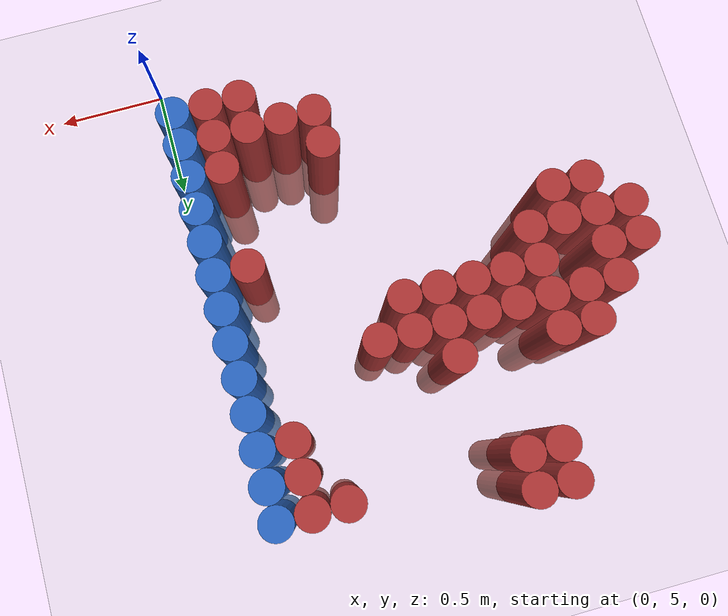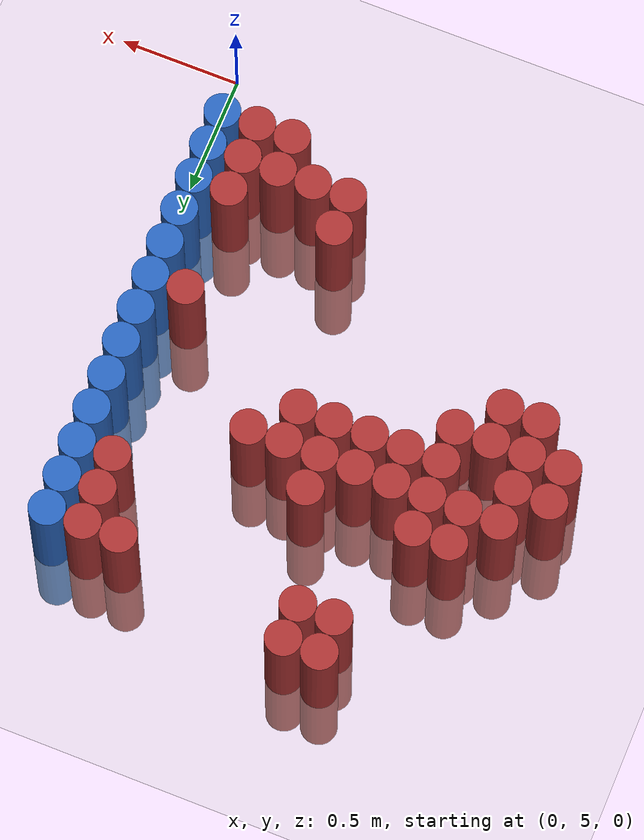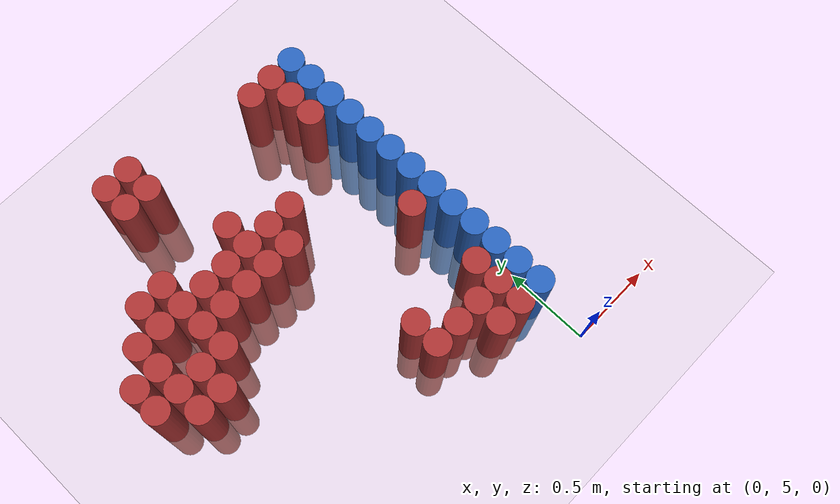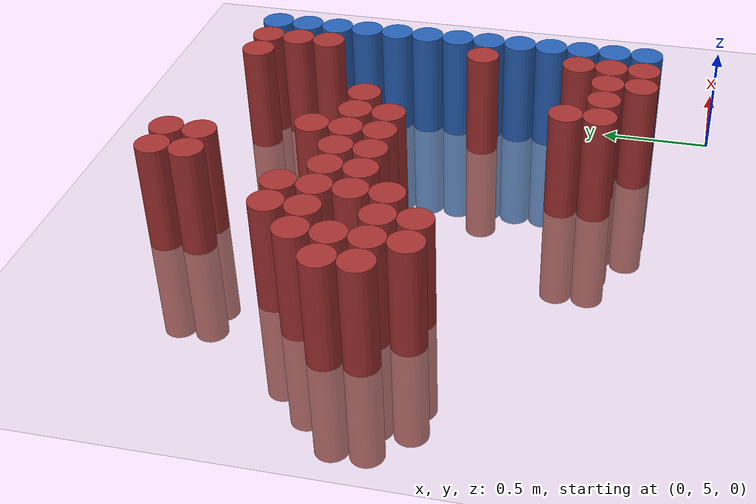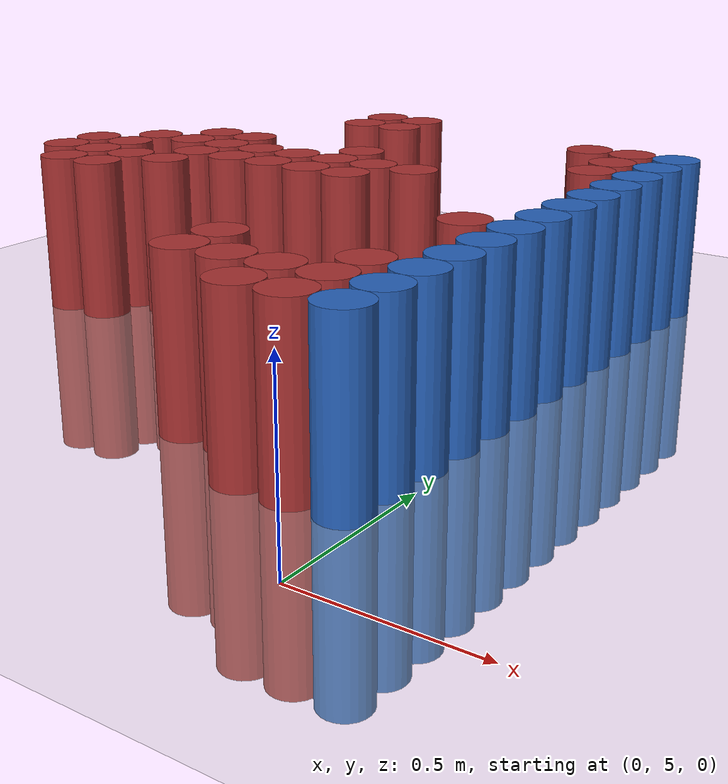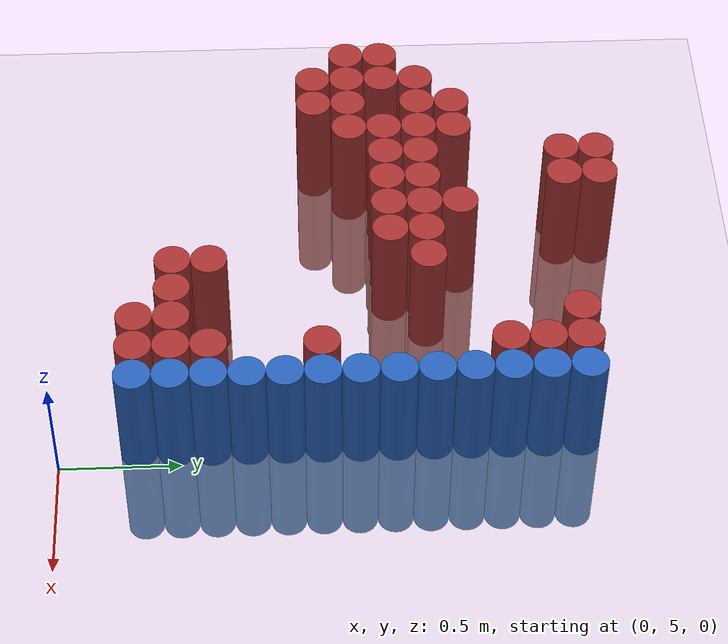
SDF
<sdf version="1.6">
 <world name="default">
  <model name="ground_plane">
   <static>1</static>
   <link name="link">
    <collision name="collision">
     <geometry><plane><normal>0 0 1</normal><size>100 100</size></plane></geometry>
     <surface><friction><ode><mu>100</mu><mu2>50</mu2></ode></friction></surface>
    </collision>
    <visual name="visual">
     <cast_shadows>0</cast_shadows>
     <geometry><plane><normal>0 0 1</normal><size>100 100</size></plane></geometry>
     <material>
      <script><uri>file://media/materials/scripts/gazebo.material</uri><name>Gazebo/Grey</name></script>
     </material>
    </visual>
   </link>
  </model>
  <model name="unit_cylinder_159">
   <static>1</static>
   <pose>-1.875000 6.225000 0.000000 0.000000 0.000000 0.000000</pose>
   <link name="link">
    <inertial>
     <mass>1</mass>
     <inertia><ixx>0.145833</ixx><ixy>0</ixy><ixz>0</ixz><iyy>0.145833</iyy><iyz>0</iyz><izz>0.125</izz></inertia>
    </inertial>
    <collision name="collision">
     <geometry><cylinder><radius>0.075000</radius><length>1</length></cylinder></geometry>
    </collision>
    <visual name="visual">
     <geometry><cylinder><radius>0.075000</radius><length>1</length></cylinder></geometry>
     <material>
      <ambient>0.648000 0.192000 0.192000 1</ambient>
      <diffuse>0.648000 0.192000 0.192000 1</diffuse>
     </material>
     <material>
      <script><name>Gazebo/Grey</name><uri>file://media/materials/scripts/gazebo.material</uri></script>
     </material>
    </visual>
   </link>
  </model>
  <model name="unit_cylinder_160">
   <static>1</static>
   <pose>-1.875000 6.375000 0.000000 0.000000 0.000000 0.000000</pose>
   <link name="link">
    <inertial>
     <mass>1</mass>
     <inertia><ixx>0.145833</ixx><ixy>0</ixy><ixz>0</ixz><iyy>0.145833</iyy><iyz>0</iyz><izz>0.125</izz></inertia>
    </inertial>
    <collision name="collision">
     <geometry><cylinder><radius>0.075000</radius><length>1</length></cylinder></geometry>
    </collision>
    <visual name="visual">
     <geometry><cylinder><radius>0.075000</radius><length>1</length></cylinder></geometry>
     <material>
      <ambient>0.648000 0.192000 0.192000 1</ambient>
      <diffuse>0.648000 0.192000 0.192000 1</diffuse>
     </material>
     <material>
      <script><name>Gazebo/Grey</name><uri>file://media/materials/scripts/gazebo.material</uri></script>
     </material>
    </visual>
   </link>
  </model>
  <model name="unit_cylinder_162">
   <static>1</static>
   <pose>-1.725000 6.075000 0.000000 0.000000 0.000000 0.000000</pose>
   <link name="link">
    <inertial>
     <mass>1</mass>
     <inertia><ixx>0.145833</ixx><ixy>0</ixy><ixz>0</ixz><iyy>0.145833</iyy><iyz>0</iyz><izz>0.125</izz></inertia>
    </inertial>
    <collision name="collision">
     <geometry><cylinder><radius>0.075000</radius><length>1</length></cylinder></geometry>
    </collision>
    <visual name="visual">
     <geometry><cylinder><radius>0.075000</radius><length>1</length></cylinder></geometry>
     <material>
      <ambient>0.648000 0.192000 0.192000 1</ambient>
      <diffuse>0.648000 0.192000 0.192000 1</diffuse>
     </material>
     <material>
      <script><name>Gazebo/Grey</name><uri>file://media/materials/scripts/gazebo.material</uri></script>
     </material>
    </visual>
   </link>
  </model>
  <model name="unit_cylinder_163">
   <static>1</static>
   <pose>-1.725000 6.225000 0.000000 0.000000 0.000000 0.000000</pose>
   <link name="link">
    <inertial>
     <mass>1</mass>
     <inertia><ixx>0.145833</ixx><ixy>0</ixy><ixz>0</ixz><iyy>0.145833</iyy><iyz>0</iyz><izz>0.125</izz></inertia>
    </inertial>
    <collision name="collision">
     <geometry><cylinder><radius>0.075000</radius><length>1</length></cylinder></geometry>
    </collision>
    <visual name="visual">
     <geometry><cylinder><radius>0.075000</radius><length>1</length></cylinder></geometry>
     <material>
      <ambient>0.648000 0.192000 0.192000 1</ambient>
      <diffuse>0.648000 0.192000 0.192000 1</diffuse>
     </material>
     <material>
      <script><name>Gazebo/Grey</name><uri>file://media/materials/scripts/gazebo.material</uri></script>
     </material>
    </visual>
   </link>
  </model>
  <model name="unit_cylinder_164">
   <static>1</static>
   <pose>-1.725000 6.375000 0.000000 0.000000 0.000000 0.000000</pose>
   <link name="link">
    <inertial>
     <mass>1</mass>
     <inertia><ixx>0.145833</ixx><ixy>0</ixy><ixz>0</ixz><iyy>0.145833</iyy><iyz>0</iyz><izz>0.125</izz></inertia>
    </inertial>
    <collision name="collision">
     <geometry><cylinder><radius>0.075000</radius><length>1</length></cylinder></geometry>
    </collision>
    <visual name="visual">
     <geometry><cylinder><radius>0.075000</radius><length>1</length></cylinder></geometry>
     <material>
      <ambient>0.648000 0.192000 0.192000 1</ambient>
      <diffuse>0.648000 0.192000 0.192000 1</diffuse>
     </material>
     <material>
      <script><name>Gazebo/Grey</name><uri>file://media/materials/scripts/gazebo.material</uri></script>
     </material>
    </visual>
   </link>
  </model>
  <model name="unit_cylinder_165">
   <static>1</static>
   <pose>-1.725000 6.525000 0.000000 0.000000 0.000000 0.000000</pose>
   <link name="link">
    <inertial>
     <mass>1</mass>
     <inertia><ixx>0.145833</ixx><ixy>0</ixy><ixz>0</ixz><iyy>0.145833</iyy><iyz>0</iyz><izz>0.125</izz></inertia>
    </inertial>
    <collision name="collision">
     <geometry><cylinder><radius>0.075000</radius><length>1</length></cylinder></geometry>
    </collision>
    <visual name="visual">
     <geometry><cylinder><radius>0.075000</radius><length>1</length></cylinder></geometry>
     <material>
      <ambient>0.648000 0.192000 0.192000 1</ambient>
      <diffuse>0.648000 0.192000 0.192000 1</diffuse>
     </material>
     <material>
      <script><name>Gazebo/Grey</name><uri>file://media/materials/scripts/gazebo.material</uri></script>
     </material>
    </visual>
   </link>
  </model>
  <model name="unit_cylinder_166">
   <static>1</static>
   <pose>-1.575000 6.075000 0.000000 0.000000 0.000000 0.000000</pose>
   <link name="link">
    <inertial>
     <mass>1</mass>
     <inertia><ixx>0.145833</ixx><ixy>0</ixy><ixz>0</ixz><iyy>0.145833</iyy><iyz>0</iyz><izz>0.125</izz></inertia>
    </inertial>
    <collision name="collision">
     <geometry><cylinder><radius>0.075000</radius><length>1</length></cylinder></geometry>
    </collision>
    <visual name="visual">
     <geometry><cylinder><radius>0.075000</radius><length>1</length></cylinder></geometry>
     <material>
      <ambient>0.648000 0.192000 0.192000 1</ambient>
      <diffuse>0.648000 0.192000 0.192000 1</diffuse>
     </material>
     <material>
      <script><name>Gazebo/Grey</name><uri>file://media/materials/scripts/gazebo.material</uri></script>
     </material>
    </visual>
   </link>
  </model>
  <model name="unit_cylinder_167">
   <static>1</static>
   <pose>-1.575000 6.225000 0.000000 0.000000 0.000000 0.000000</pose>
   <link name="link">
    <inertial>
     <mass>1</mass>
     <inertia><ixx>0.145833</ixx><ixy>0</ixy><ixz>0</ixz><iyy>0.145833</iyy><iyz>0</iyz><izz>0.125</izz></inertia>
    </inertial>
    <collision name="collision">
     <geometry><cylinder><radius>0.075000</radius><length>1</length></cylinder></geometry>
    </collision>
    <visual name="visual">
     <geometry><cylinder><radius>0.075000</radius><length>1</length></cylinder></geometry>
     <material>
      <ambient>0.648000 0.192000 0.192000 1</ambient>
      <diffuse>0.648000 0.192000 0.192000 1</diffuse>
     </material>
     <material>
      <script><name>Gazebo/Grey</name><uri>file://media/materials/scripts/gazebo.material</uri></script>
     </material>
    </visual>
   </link>
  </model>
  <model name="unit_cylinder_168">
   <static>1</static>
   <pose>-1.575000 6.525000 0.000000 0.000000 0.000000 0.000000</pose>
   <link name="link">
    <inertial>
     <mass>1</mass>
     <inertia><ixx>0.145833</ixx><ixy>0</ixy><ixz>0</ixz><iyy>0.145833</iyy><iyz>0</iyz><izz>0.125</izz></inertia>
    </inertial>
    <collision name="collision">
     <geometry><cylinder><radius>0.075000</radius><length>1</length></cylinder></geometry>
    </collision>
    <visual name="visual">
     <geometry><cylinder><radius>0.075000</radius><length>1</length></cylinder></geometry>
     <material>
      <ambient>0.648000 0.192000 0.192000 1</ambient>
      <diffuse>0.648000 0.192000 0.192000 1</diffuse>
     </material>
     <material>
      <script><name>Gazebo/Grey</name><uri>file://media/materials/scripts/gazebo.material</uri></script>
     </material>
    </visual>
   </link>
  </model>
  <model name="unit_cylinder_169">
   <static>1</static>
   <pose>-1.575000 6.675000 0.000000 0.000000 0.000000 0.000000</pose>
   <link name="link">
    <inertial>
     <mass>1</mass>
     <inertia><ixx>0.145833</ixx><ixy>0</ixy><ixz>0</ixz><iyy>0.145833</iyy><iyz>0</iyz><izz>0.125</izz></inertia>
    </inertial>
    <collision name="collision">
     <geometry><cylinder><radius>0.075000</radius><length>1</length></cylinder></geometry>
    </collision>
    <visual name="visual">
     <geometry><cylinder><radius>0.075000</radius><length>1</length></cylinder></geometry>
     <material>
      <ambient>0.648000 0.192000 0.192000 1</ambient>
      <diffuse>0.648000 0.192000 0.192000 1</diffuse>
     </material>
     <material>
      <script><name>Gazebo/Grey</name><uri>file://media/materials/scripts/gazebo.material</uri></script>
     </material>
    </visual>
   </link>
  </model>
  <model name="unit_cylinder_171">
   <static>1</static>
   <pose>-1.425000 6.225000 0.000000 0.000000 0.000000 0.000000</pose>
   <link name="link">
    <inertial>
     <mass>1</mass>
     <inertia><ixx>0.145833</ixx><ixy>0</ixy><ixz>0</ixz><iyy>0.145833</iyy><iyz>0</iyz><izz>0.125</izz></inertia>
    </inertial>
    <collision name="collision">
     <geometry><cylinder><radius>0.075000</radius><length>1</length></cylinder></geometry>
    </collision>
    <visual name="visual">
     <geometry><cylinder><radius>0.075000</radius><length>1</length></cylinder></geometry>
     <material>
      <ambient>0.648000 0.192000 0.192000 1</ambient>
      <diffuse>0.648000 0.192000 0.192000 1</diffuse>
     </material>
     <material>
      <script><name>Gazebo/Grey</name><uri>file://media/materials/scripts/gazebo.material</uri></script>
     </material>
    </visual>
   </link>
  </model>
  <model name="unit_cylinder_172">
   <static>1</static>
   <pose>-1.425000 6.375000 0.000000 0.000000 0.000000 0.000000</pose>
   <link name="link">
    <inertial>
     <mass>1</mass>
     <inertia><ixx>0.145833</ixx><ixy>0</ixy><ixz>0</ixz><iyy>0.145833</iyy><iyz>0</iyz><izz>0.125</izz></inertia>
    </inertial>
    <collision name="collision">
     <geometry><cylinder><radius>0.075000</radius><length>1</length></cylinder></geometry>
    </collision>
    <visual name="visual">
     <geometry><cylinder><radius>0.075000</radius><length>1</length></cylinder></geometry>
     <material>
      <ambient>0.648000 0.192000 0.192000 1</ambient>
      <diffuse>0.648000 0.192000 0.192000 1</diffuse>
     </material>
     <material>
      <script><name>Gazebo/Grey</name><uri>file://media/materials/scripts/gazebo.material</uri></script>
     </material>
    </visual>
   </link>
  </model>
  <model name="unit_cylinder_173">
   <static>1</static>
   <pose>-1.425000 6.525000 0.000000 0.000000 0.000000 0.000000</pose>
   <link name="link">
    <inertial>
     <mass>1</mass>
     <inertia><ixx>0.145833</ixx><ixy>0</ixy><ixz>0</ixz><iyy>0.145833</iyy><iyz>0</iyz><izz>0.125</izz></inertia>
    </inertial>
    <collision name="collision">
     <geometry><cylinder><radius>0.075000</radius><length>1</length></cylinder></geometry>
    </collision>
    <visual name="visual">
     <geometry><cylinder><radius>0.075000</radius><length>1</length></cylinder></geometry>
     <material>
      <ambient>0.648000 0.192000 0.192000 1</ambient>
      <diffuse>0.648000 0.192000 0.192000 1</diffuse>
     </material>
     <material>
      <script><name>Gazebo/Grey</name><uri>file://media/materials/scripts/gazebo.material</uri></script>
     </material>
    </visual>
   </link>
  </model>
  <model name="unit_cylinder_174">
   <static>1</static>
   <pose>-1.425000 6.675000 0.000000 0.000000 0.000000 0.000000</pose>
   <link name="link">
    <inertial>
     <mass>1</mass>
     <inertia><ixx>0.145833</ixx><ixy>0</ixy><ixz>0</ixz><iyy>0.145833</iyy><iyz>0</iyz><izz>0.125</izz></inertia>
    </inertial>
    <collision name="collision">
     <geometry><cylinder><radius>0.075000</radius><length>1</length></cylinder></geometry>
    </collision>
    <visual name="visual">
     <geometry><cylinder><radius>0.075000</radius><length>1</length></cylinder></geometry>
     <material>
      <ambient>0.648000 0.192000 0.192000 1</ambient>
      <diffuse>0.648000 0.192000 0.192000 1</diffuse>
     </material>
     <material>
      <script><name>Gazebo/Grey</name><uri>file://media/materials/scripts/gazebo.material</uri></script>
     </material>
    </visual>
   </link>
  </model>
  <model name="unit_cylinder_179">
   <static>1</static>
   <pose>-1.275000 6.375000 0.000000 0.000000 0.000000 0.000000</pose>
   <link name="link">
    <inertial>
     <mass>1</mass>
     <inertia><ixx>0.145833</ixx><ixy>0</ixy><ixz>0</ixz><iyy>0.145833</iyy><iyz>0</iyz><izz>0.125</izz></inertia>
    </inertial>
    <collision name="collision">
     <geometry><cylinder><radius>0.075000</radius><length>1</length></cylinder></geometry>
    </collision>
    <visual name="visual">
     <geometry><cylinder><radius>0.075000</radius><length>1</length></cylinder></geometry>
     <material>
      <ambient>0.648000 0.192000 0.192000 1</ambient>
      <diffuse>0.648000 0.192000 0.192000 1</diffuse>
     </material>
     <material>
      <script><name>Gazebo/Grey</name><uri>file://media/materials/scripts/gazebo.material</uri></script>
     </material>
    </visual>
   </link>
  </model>
  <model name="unit_cylinder_180">
   <static>1</static>
   <pose>-1.275000 6.525000 0.000000 0.000000 0.000000 0.000000</pose>
   <link name="link">
    <inertial>
     <mass>1</mass>
     <inertia><ixx>0.145833</ixx><ixy>0</ixy><ixz>0</ixz><iyy>0.145833</iyy><iyz>0</iyz><izz>0.125</izz></inertia>
    </inertial>
    <collision name="collision">
     <geometry><cylinder><radius>0.075000</radius><length>1</length></cylinder></geometry>
    </collision>
    <visual name="visual">
     <geometry><cylinder><radius>0.075000</radius><length>1</length></cylinder></geometry>
     <material>
      <ambient>0.648000 0.192000 0.192000 1</ambient>
      <diffuse>0.648000 0.192000 0.192000 1</diffuse>
     </material>
     <material>
      <script><name>Gazebo/Grey</name><uri>file://media/materials/scripts/gazebo.material</uri></script>
     </material>
    </visual>
   </link>
  </model>
  <model name="unit_cylinder_181">
   <static>1</static>
   <pose>-1.275000 7.125000 0.000000 0.000000 0.000000 0.000000</pose>
   <link name="link">
    <inertial>
     <mass>1</mass>
     <inertia><ixx>0.145833</ixx><ixy>0</ixy><ixz>0</ixz><iyy>0.145833</iyy><iyz>0</iyz><izz>0.125</izz></inertia>
    </inertial>
    <collision name="collision">
     <geometry><cylinder><radius>0.075000</radius><length>1</length></cylinder></geometry>
    </collision>
    <visual name="visual">
     <geometry><cylinder><radius>0.075000</radius><length>1</length></cylinder></geometry>
     <material>
      <ambient>0.648000 0.192000 0.192000 1</ambient>
      <diffuse>0.648000 0.192000 0.192000 1</diffuse>
     </material>
     <material>
      <script><name>Gazebo/Grey</name><uri>file://media/materials/scripts/gazebo.material</uri></script>
     </material>
    </visual>
   </link>
  </model>
  <model name="unit_cylinder_182">
   <static>1</static>
   <pose>-1.275000 7.275000 0.000000 0.000000 0.000000 0.000000</pose>
   <link name="link">
    <inertial>
     <mass>1</mass>
     <inertia><ixx>0.145833</ixx><ixy>0</ixy><ixz>0</ixz><iyy>0.145833</iyy><iyz>0</iyz><izz>0.125</izz></inertia>
    </inertial>
    <collision name="collision">
     <geometry><cylinder><radius>0.075000</radius><length>1</length></cylinder></geometry>
    </collision>
    <visual name="visual">
     <geometry><cylinder><radius>0.075000</radius><length>1</length></cylinder></geometry>
     <material>
      <ambient>0.648000 0.192000 0.192000 1</ambient>
      <diffuse>0.648000 0.192000 0.192000 1</diffuse>
     </material>
     <material>
      <script><name>Gazebo/Grey</name><uri>file://media/materials/scripts/gazebo.material</uri></script>
     </material>
    </visual>
   </link>
  </model>
  <model name="unit_cylinder_186">
   <static>1</static>
   <pose>-1.125000 6.375000 0.000000 0.000000 0.000000 0.000000</pose>
   <link name="link">
    <inertial>
     <mass>1</mass>
     <inertia><ixx>0.145833</ixx><ixy>0</ixy><ixz>0</ixz><iyy>0.145833</iyy><iyz>0</iyz><izz>0.125</izz></inertia>
    </inertial>
    <collision name="collision">
     <geometry><cylinder><radius>0.075000</radius><length>1</length></cylinder></geometry>
    </collision>
    <visual name="visual">
     <geometry><cylinder><radius>0.075000</radius><length>1</length></cylinder></geometry>
     <material>
      <ambient>0.648000 0.192000 0.192000 1</ambient>
      <diffuse>0.648000 0.192000 0.192000 1</diffuse>
     </material>
     <material>
      <script><name>Gazebo/Grey</name><uri>file://media/materials/scripts/gazebo.material</uri></script>
     </material>
    </visual>
   </link>
  </model>
  <model name="unit_cylinder_187">
   <static>1</static>
   <pose>-1.125000 6.525000 0.000000 0.000000 0.000000 0.000000</pose>
   <link name="link">
    <inertial>
     <mass>1</mass>
     <inertia><ixx>0.145833</ixx><ixy>0</ixy><ixz>0</ixz><iyy>0.145833</iyy><iyz>0</iyz><izz>0.125</izz></inertia>
    </inertial>
    <collision name="collision">
     <geometry><cylinder><radius>0.075000</radius><length>1</length></cylinder></geometry>
    </collision>
    <visual name="visual">
     <geometry><cylinder><radius>0.075000</radius><length>1</length></cylinder></geometry>
     <material>
      <ambient>0.648000 0.192000 0.192000 1</ambient>
      <diffuse>0.648000 0.192000 0.192000 1</diffuse>
     </material>
     <material>
      <script><name>Gazebo/Grey</name><uri>file://media/materials/scripts/gazebo.material</uri></script>
     </material>
    </visual>
   </link>
  </model>
  <model name="unit_cylinder_188">
   <static>1</static>
   <pose>-1.125000 7.125000 0.000000 0.000000 0.000000 0.000000</pose>
   <link name="link">
    <inertial>
     <mass>1</mass>
     <inertia><ixx>0.145833</ixx><ixy>0</ixy><ixz>0</ixz><iyy>0.145833</iyy><iyz>0</iyz><izz>0.125</izz></inertia>
    </inertial>
    <collision name="collision">
     <geometry><cylinder><radius>0.075000</radius><length>1</length></cylinder></geometry>
    </collision>
    <visual name="visual">
     <geometry><cylinder><radius>0.075000</radius><length>1</length></cylinder></geometry>
     <material>
      <ambient>0.648000 0.192000 0.192000 1</ambient>
      <diffuse>0.648000 0.192000 0.192000 1</diffuse>
     </material>
     <material>
      <script><name>Gazebo/Grey</name><uri>file://media/materials/scripts/gazebo.material</uri></script>
     </material>
    </visual>
   </link>
  </model>
  <model name="unit_cylinder_189">
   <static>1</static>
   <pose>-1.125000 7.275000 0.000000 0.000000 0.000000 0.000000</pose>
   <link name="link">
    <inertial>
     <mass>1</mass>
     <inertia><ixx>0.145833</ixx><ixy>0</ixy><ixz>0</ixz><iyy>0.145833</iyy><iyz>0</iyz><izz>0.125</izz></inertia>
    </inertial>
    <collision name="collision">
     <geometry><cylinder><radius>0.075000</radius><length>1</length></cylinder></geometry>
    </collision>
    <visual name="visual">
     <geometry><cylinder><radius>0.075000</radius><length>1</length></cylinder></geometry>
     <material>
      <ambient>0.648000 0.192000 0.192000 1</ambient>
      <diffuse>0.648000 0.192000 0.192000 1</diffuse>
     </material>
     <material>
      <script><name>Gazebo/Grey</name><uri>file://media/materials/scripts/gazebo.material</uri></script>
     </material>
    </visual>
   </link>
  </model>
  <model name="unit_cylinder_193">
   <static>1</static>
   <pose>-0.975000 6.375000 0.000000 0.000000 0.000000 0.000000</pose>
   <link name="link">
    <inertial>
     <mass>1</mass>
     <inertia><ixx>0.145833</ixx><ixy>0</ixy><ixz>0</ixz><iyy>0.145833</iyy><iyz>0</iyz><izz>0.125</izz></inertia>
    </inertial>
    <collision name="collision">
     <geometry><cylinder><radius>0.075000</radius><length>1</length></cylinder></geometry>
    </collision>
    <visual name="visual">
     <geometry><cylinder><radius>0.075000</radius><length>1</length></cylinder></geometry>
     <material>
      <ambient>0.648000 0.192000 0.192000 1</ambient>
      <diffuse>0.648000 0.192000 0.192000 1</diffuse>
     </material>
     <material>
      <script><name>Gazebo/Grey</name><uri>file://media/materials/scripts/gazebo.material</uri></script>
     </material>
    </visual>
   </link>
  </model>
  <model name="unit_cylinder_194">
   <static>1</static>
   <pose>-0.975000 6.525000 0.000000 0.000000 0.000000 0.000000</pose>
   <link name="link">
    <inertial>
     <mass>1</mass>
     <inertia><ixx>0.145833</ixx><ixy>0</ixy><ixz>0</ixz><iyy>0.145833</iyy><iyz>0</iyz><izz>0.125</izz></inertia>
    </inertial>
    <collision name="collision">
     <geometry><cylinder><radius>0.075000</radius><length>1</length></cylinder></geometry>
    </collision>
    <visual name="visual">
     <geometry><cylinder><radius>0.075000</radius><length>1</length></cylinder></geometry>
     <material>
      <ambient>0.648000 0.192000 0.192000 1</ambient>
      <diffuse>0.648000 0.192000 0.192000 1</diffuse>
     </material>
     <material>
      <script><name>Gazebo/Grey</name><uri>file://media/materials/scripts/gazebo.material</uri></script>
     </material>
    </visual>
   </link>
  </model>
  <model name="unit_cylinder_195">
   <static>1</static>
   <pose>-0.975000 6.675000 0.000000 0.000000 0.000000 0.000000</pose>
   <link name="link">
    <inertial>
     <mass>1</mass>
     <inertia><ixx>0.145833</ixx><ixy>0</ixy><ixz>0</ixz><iyy>0.145833</iyy><iyz>0</iyz><izz>0.125</izz></inertia>
    </inertial>
    <collision name="collision">
     <geometry><cylinder><radius>0.075000</radius><length>1</length></cylinder></geometry>
    </collision>
    <visual name="visual">
     <geometry><cylinder><radius>0.075000</radius><length>1</length></cylinder></geometry>
     <material>
      <ambient>0.648000 0.192000 0.192000 1</ambient>
      <diffuse>0.648000 0.192000 0.192000 1</diffuse>
     </material>
     <material>
      <script><name>Gazebo/Grey</name><uri>file://media/materials/scripts/gazebo.material</uri></script>
     </material>
    </visual>
   </link>
  </model>
  <model name="unit_cylinder_200">
   <static>1</static>
   <pose>-0.825000 6.375000 0.000000 0.000000 0.000000 0.000000</pose>
   <link name="link">
    <inertial>
     <mass>1</mass>
     <inertia><ixx>0.145833</ixx><ixy>0</ixy><ixz>0</ixz><iyy>0.145833</iyy><iyz>0</iyz><izz>0.125</izz></inertia>
    </inertial>
    <collision name="collision">
     <geometry><cylinder><radius>0.075000</radius><length>1</length></cylinder></geometry>
    </collision>
    <visual name="visual">
     <geometry><cylinder><radius>0.075000</radius><length>1</length></cylinder></geometry>
     <material>
      <ambient>0.648000 0.192000 0.192000 1</ambient>
      <diffuse>0.648000 0.192000 0.192000 1</diffuse>
     </material>
     <material>
      <script><name>Gazebo/Grey</name><uri>file://media/materials/scripts/gazebo.material</uri></script>
     </material>
    </visual>
   </link>
  </model>
  <model name="unit_cylinder_201">
   <static>1</static>
   <pose>-0.825000 6.525000 0.000000 0.000000 0.000000 0.000000</pose>
   <link name="link">
    <inertial>
     <mass>1</mass>
     <inertia><ixx>0.145833</ixx><ixy>0</ixy><ixz>0</ixz><iyy>0.145833</iyy><iyz>0</iyz><izz>0.125</izz></inertia>
    </inertial>
    <collision name="collision">
     <geometry><cylinder><radius>0.075000</radius><length>1</length></cylinder></geometry>
    </collision>
    <visual name="visual">
     <geometry><cylinder><radius>0.075000</radius><length>1</length></cylinder></geometry>
     <material>
      <ambient>0.648000 0.192000 0.192000 1</ambient>
      <diffuse>0.648000 0.192000 0.192000 1</diffuse>
     </material>
     <material>
      <script><name>Gazebo/Grey</name><uri>file://media/materials/scripts/gazebo.material</uri></script>
     </material>
    </visual>
   </link>
  </model>
  <model name="unit_cylinder_206">
   <static>1</static>
   <pose>-0.675000 5.475000 0.000000 0.000000 0.000000 0.000000</pose>
   <link name="link">
    <inertial>
     <mass>1</mass>
     <inertia><ixx>0.145833</ixx><ixy>0</ixy><ixz>0</ixz><iyy>0.145833</iyy><iyz>0</iyz><izz>0.125</izz></inertia>
    </inertial>
    <collision name="collision">
     <geometry><cylinder><radius>0.075000</radius><length>1</length></cylinder></geometry>
    </collision>
    <visual name="visual">
     <geometry><cylinder><radius>0.075000</radius><length>1</length></cylinder></geometry>
     <material>
      <ambient>0.648000 0.192000 0.192000 1</ambient>
      <diffuse>0.648000 0.192000 0.192000 1</diffuse>
     </material>
     <material>
      <script><name>Gazebo/Grey</name><uri>file://media/materials/scripts/gazebo.material</uri></script>
     </material>
    </visual>
   </link>
  </model>
  <model name="unit_cylinder_207">
   <static>1</static>
   <pose>-0.675000 5.625000 0.000000 0.000000 0.000000 0.000000</pose>
   <link name="link">
    <inertial>
     <mass>1</mass>
     <inertia><ixx>0.145833</ixx><ixy>0</ixy><ixz>0</ixz><iyy>0.145833</iyy><iyz>0</iyz><izz>0.125</izz></inertia>
    </inertial>
    <collision name="collision">
     <geometry><cylinder><radius>0.075000</radius><length>1</length></cylinder></geometry>
    </collision>
    <visual name="visual">
     <geometry><cylinder><radius>0.075000</radius><length>1</length></cylinder></geometry>
     <material>
      <ambient>0.648000 0.192000 0.192000 1</ambient>
      <diffuse>0.648000 0.192000 0.192000 1</diffuse>
     </material>
     <material>
      <script><name>Gazebo/Grey</name><uri>file://media/materials/scripts/gazebo.material</uri></script>
     </material>
    </visual>
   </link>
  </model>
  <model name="unit_cylinder_208">
   <static>1</static>
   <pose>-0.675000 6.525000 0.000000 0.000000 0.000000 0.000000</pose>
   <link name="link">
    <inertial>
     <mass>1</mass>
     <inertia><ixx>0.145833</ixx><ixy>0</ixy><ixz>0</ixz><iyy>0.145833</iyy><iyz>0</iyz><izz>0.125</izz></inertia>
    </inertial>
    <collision name="collision">
     <geometry><cylinder><radius>0.075000</radius><length>1</length></cylinder></geometry>
    </collision>
    <visual name="visual">
     <geometry><cylinder><radius>0.075000</radius><length>1</length></cylinder></geometry>
     <material>
      <ambient>0.648000 0.192000 0.192000 1</ambient>
      <diffuse>0.648000 0.192000 0.192000 1</diffuse>
     </material>
     <material>
      <script><name>Gazebo/Grey</name><uri>file://media/materials/scripts/gazebo.material</uri></script>
     </material>
    </visual>
   </link>
  </model>
  <model name="unit_cylinder_214">
   <static>1</static>
   <pose>-0.525000 5.475000 0.000000 0.000000 0.000000 0.000000</pose>
   <link name="link">
    <inertial>
     <mass>1</mass>
     <inertia><ixx>0.145833</ixx><ixy>0</ixy><ixz>0</ixz><iyy>0.145833</iyy><iyz>0</iyz><izz>0.125</izz></inertia>
    </inertial>
    <collision name="collision">
     <geometry><cylinder><radius>0.075000</radius><length>1</length></cylinder></geometry>
    </collision>
    <visual name="visual">
     <geometry><cylinder><radius>0.075000</radius><length>1</length></cylinder></geometry>
     <material>
      <ambient>0.648000 0.192000 0.192000 1</ambient>
      <diffuse>0.648000 0.192000 0.192000 1</diffuse>
     </material>
     <material>
      <script><name>Gazebo/Grey</name><uri>file://media/materials/scripts/gazebo.material</uri></script>
     </material>
    </visual>
   </link>
  </model>
  <model name="unit_cylinder_217">
   <static>1</static>
   <pose>-0.375000 5.325000 0.000000 0.000000 0.000000 0.000000</pose>
   <link name="link">
    <inertial>
     <mass>1</mass>
     <inertia><ixx>0.145833</ixx><ixy>0</ixy><ixz>0</ixz><iyy>0.145833</iyy><iyz>0</iyz><izz>0.125</izz></inertia>
    </inertial>
    <collision name="collision">
     <geometry><cylinder><radius>0.075000</radius><length>1</length></cylinder></geometry>
    </collision>
    <visual name="visual">
     <geometry><cylinder><radius>0.075000</radius><length>1</length></cylinder></geometry>
     <material>
      <ambient>0.648000 0.192000 0.192000 1</ambient>
      <diffuse>0.648000 0.192000 0.192000 1</diffuse>
     </material>
     <material>
      <script><name>Gazebo/Grey</name><uri>file://media/materials/scripts/gazebo.material</uri></script>
     </material>
    </visual>
   </link>
  </model>
  <model name="unit_cylinder_218">
   <static>1</static>
   <pose>-0.375000 5.475000 0.000000 0.000000 0.000000 0.000000</pose>
   <link name="link">
    <inertial>
     <mass>1</mass>
     <inertia><ixx>0.145833</ixx><ixy>0</ixy><ixz>0</ixz><iyy>0.145833</iyy><iyz>0</iyz><izz>0.125</izz></inertia>
    </inertial>
    <collision name="collision">
     <geometry><cylinder><radius>0.075000</radius><length>1</length></cylinder></geometry>
    </collision>
    <visual name="visual">
     <geometry><cylinder><radius>0.075000</radius><length>1</length></cylinder></geometry>
     <material>
      <ambient>0.648000 0.192000 0.192000 1</ambient>
      <diffuse>0.648000 0.192000 0.192000 1</diffuse>
     </material>
     <material>
      <script><name>Gazebo/Grey</name><uri>file://media/materials/scripts/gazebo.material</uri></script>
     </material>
    </visual>
   </link>
  </model>
  <model name="unit_cylinder_219">
   <static>1</static>
   <pose>-0.375000 7.125000 0.000000 0.000000 0.000000 0.000000</pose>
   <link name="link">
    <inertial>
     <mass>1</mass>
     <inertia><ixx>0.145833</ixx><ixy>0</ixy><ixz>0</ixz><iyy>0.145833</iyy><iyz>0</iyz><izz>0.125</izz></inertia>
    </inertial>
    <collision name="collision">
     <geometry><cylinder><radius>0.075000</radius><length>1</length></cylinder></geometry>
    </collision>
    <visual name="visual">
     <geometry><cylinder><radius>0.075000</radius><length>1</length></cylinder></geometry>
     <material>
      <ambient>0.648000 0.192000 0.192000 1</ambient>
      <diffuse>0.648000 0.192000 0.192000 1</diffuse>
     </material>
     <material>
      <script><name>Gazebo/Grey</name><uri>file://media/materials/scripts/gazebo.material</uri></script>
     </material>
    </visual>
   </link>
  </model>
  <model name="unit_cylinder_223">
   <static>1</static>
   <pose>-0.225000 5.325000 0.000000 0.000000 0.000000 0.000000</pose>
   <link name="link">
    <inertial>
     <mass>1</mass>
     <inertia><ixx>0.145833</ixx><ixy>0</ixy><ixz>0</ixz><iyy>0.145833</iyy><iyz>0</iyz><izz>0.125</izz></inertia>
    </inertial>
    <collision name="collision">
     <geometry><cylinder><radius>0.075000</radius><length>1</length></cylinder></geometry>
    </collision>
    <visual name="visual">
     <geometry><cylinder><radius>0.075000</radius><length>1</length></cylinder></geometry>
     <material>
      <ambient>0.648000 0.192000 0.192000 1</ambient>
      <diffuse>0.648000 0.192000 0.192000 1</diffuse>
     </material>
     <material>
      <script><name>Gazebo/Grey</name><uri>file://media/materials/scripts/gazebo.material</uri></script>
     </material>
    </visual>
   </link>
  </model>
  <model name="unit_cylinder_224">
   <static>1</static>
   <pose>-0.225000 5.475000 0.000000 0.000000 0.000000 0.000000</pose>
   <link name="link">
    <inertial>
     <mass>1</mass>
     <inertia><ixx>0.145833</ixx><ixy>0</ixy><ixz>0</ixz><iyy>0.145833</iyy><iyz>0</iyz><izz>0.125</izz></inertia>
    </inertial>
    <collision name="collision">
     <geometry><cylinder><radius>0.075000</radius><length>1</length></cylinder></geometry>
    </collision>
    <visual name="visual">
     <geometry><cylinder><radius>0.075000</radius><length>1</length></cylinder></geometry>
     <material>
      <ambient>0.648000 0.192000 0.192000 1</ambient>
      <diffuse>0.648000 0.192000 0.192000 1</diffuse>
     </material>
     <material>
      <script><name>Gazebo/Grey</name><uri>file://media/materials/scripts/gazebo.material</uri></script>
     </material>
    </visual>
   </link>
  </model>
  <model name="unit_cylinder_225">
   <static>1</static>
   <pose>-0.225000 5.625000 0.000000 0.000000 0.000000 0.000000</pose>
   <link name="link">
    <inertial>
     <mass>1</mass>
     <inertia><ixx>0.145833</ixx><ixy>0</ixy><ixz>0</ixz><iyy>0.145833</iyy><iyz>0</iyz><izz>0.125</izz></inertia>
    </inertial>
    <collision name="collision">
     <geometry><cylinder><radius>0.075000</radius><length>1</length></cylinder></geometry>
    </collision>
    <visual name="visual">
     <geometry><cylinder><radius>0.075000</radius><length>1</length></cylinder></geometry>
     <material>
      <ambient>0.648000 0.192000 0.192000 1</ambient>
      <diffuse>0.648000 0.192000 0.192000 1</diffuse>
     </material>
     <material>
      <script><name>Gazebo/Grey</name><uri>file://media/materials/scripts/gazebo.material</uri></script>
     </material>
    </visual>
   </link>
  </model>
  <model name="unit_cylinder_226">
   <static>1</static>
   <pose>-0.225000 6.075000 0.000000 0.000000 0.000000 0.000000</pose>
   <link name="link">
    <inertial>
     <mass>1</mass>
     <inertia><ixx>0.145833</ixx><ixy>0</ixy><ixz>0</ixz><iyy>0.145833</iyy><iyz>0</iyz><izz>0.125</izz></inertia>
    </inertial>
    <collision name="collision">
     <geometry><cylinder><radius>0.075000</radius><length>1</length></cylinder></geometry>
    </collision>
    <visual name="visual">
     <geometry><cylinder><radius>0.075000</radius><length>1</length></cylinder></geometry>
     <material>
      <ambient>0.648000 0.192000 0.192000 1</ambient>
      <diffuse>0.648000 0.192000 0.192000 1</diffuse>
     </material>
     <material>
      <script><name>Gazebo/Grey</name><uri>file://media/materials/scripts/gazebo.material</uri></script>
     </material>
    </visual>
   </link>
  </model>
  <model name="unit_cylinder_227">
   <static>1</static>
   <pose>-0.225000 6.825000 0.000000 0.000000 0.000000 0.000000</pose>
   <link name="link">
    <inertial>
     <mass>1</mass>
     <inertia><ixx>0.145833</ixx><ixy>0</ixy><ixz>0</ixz><iyy>0.145833</iyy><iyz>0</iyz><izz>0.125</izz></inertia>
    </inertial>
    <collision name="collision">
     <geometry><cylinder><radius>0.075000</radius><length>1</length></cylinder></geometry>
    </collision>
    <visual name="visual">
     <geometry><cylinder><radius>0.075000</radius><length>1</length></cylinder></geometry>
     <material>
      <ambient>0.648000 0.192000 0.192000 1</ambient>
      <diffuse>0.648000 0.192000 0.192000 1</diffuse>
     </material>
     <material>
      <script><name>Gazebo/Grey</name><uri>file://media/materials/scripts/gazebo.material</uri></script>
     </material>
    </visual>
   </link>
  </model>
  <model name="unit_cylinder_228">
   <static>1</static>
   <pose>-0.225000 6.975000 0.000000 0.000000 0.000000 0.000000</pose>
   <link name="link">
    <inertial>
     <mass>1</mass>
     <inertia><ixx>0.145833</ixx><ixy>0</ixy><ixz>0</ixz><iyy>0.145833</iyy><iyz>0</iyz><izz>0.125</izz></inertia>
    </inertial>
    <collision name="collision">
     <geometry><cylinder><radius>0.075000</radius><length>1</length></cylinder></geometry>
    </collision>
    <visual name="visual">
     <geometry><cylinder><radius>0.075000</radius><length>1</length></cylinder></geometry>
     <material>
      <ambient>0.648000 0.192000 0.192000 1</ambient>
      <diffuse>0.648000 0.192000 0.192000 1</diffuse>
     </material>
     <material>
      <script><name>Gazebo/Grey</name><uri>file://media/materials/scripts/gazebo.material</uri></script>
     </material>
    </visual>
   </link>
  </model>
  <model name="unit_cylinder_229">
   <static>1</static>
   <pose>-0.225000 7.125000 0.000000 0.000000 0.000000 0.000000</pose>
   <link name="link">
    <inertial>
     <mass>1</mass>
     <inertia><ixx>0.145833</ixx><ixy>0</ixy><ixz>0</ixz><iyy>0.145833</iyy><iyz>0</iyz><izz>0.125</izz></inertia>
    </inertial>
    <collision name="collision">
     <geometry><cylinder><radius>0.075000</radius><length>1</length></cylinder></geometry>
    </collision>
    <visual name="visual">
     <geometry><cylinder><radius>0.075000</radius><length>1</length></cylinder></geometry>
     <material>
      <ambient>0.648000 0.192000 0.192000 1</ambient>
      <diffuse>0.648000 0.192000 0.192000 1</diffuse>
     </material>
     <material>
      <script><name>Gazebo/Grey</name><uri>file://media/materials/scripts/gazebo.material</uri></script>
     </material>
    </visual>
   </link>
  </model>
  <model name="unit_cylinder_240">
   <static>1</static>
   <pose>-0.075000 5.325000 0.000000 0.000000 0.000000 0.000000</pose>
   <link name="link">
    <inertial>
     <mass>1</mass>
     <inertia><ixx>0.145833</ixx><ixy>0</ixy><ixz>0</ixz><iyy>0.145833</iyy><iyz>0</iyz><izz>0.125</izz></inertia>
    </inertial>
    <collision name="collision">
     <geometry><cylinder><radius>0.075000</radius><length>1</length></cylinder></geometry>
    </collision>
    <visual name="visual">
     <geometry><cylinder><radius>0.075000</radius><length>1</length></cylinder></geometry>
     <material>
      <ambient>0.152000 0.379000 0.720000 1</ambient>
      <diffuse>0.152000 0.379000 0.720000 1</diffuse>
     </material>
     <material>
      <script><name>Gazebo/Grey</name><uri>file://media/materials/scripts/gazebo.material</uri></script>
     </material>
    </visual>
   </link>
  </model>
  <model name="unit_cylinder_241">
   <static>1</static>
   <pose>-0.075000 5.475000 0.000000 0.000000 0.000000 0.000000</pose>
   <link name="link">
    <inertial>
     <mass>1</mass>
     <inertia><ixx>0.145833</ixx><ixy>0</ixy><ixz>0</ixz><iyy>0.145833</iyy><iyz>0</iyz><izz>0.125</izz></inertia>
    </inertial>
    <collision name="collision">
     <geometry><cylinder><radius>0.075000</radius><length>1</length></cylinder></geometry>
    </collision>
    <visual name="visual">
     <geometry><cylinder><radius>0.075000</radius><length>1</length></cylinder></geometry>
     <material>
      <ambient>0.152000 0.379000 0.720000 1</ambient>
      <diffuse>0.152000 0.379000 0.720000 1</diffuse>
     </material>
     <material>
      <script><name>Gazebo/Grey</name><uri>file://media/materials/scripts/gazebo.material</uri></script>
     </material>
    </visual>
   </link>
  </model>
  <model name="unit_cylinder_242">
   <static>1</static>
   <pose>-0.075000 5.625000 0.000000 0.000000 0.000000 0.000000</pose>
   <link name="link">
    <inertial>
     <mass>1</mass>
     <inertia><ixx>0.145833</ixx><ixy>0</ixy><ixz>0</ixz><iyy>0.145833</iyy><iyz>0</iyz><izz>0.125</izz></inertia>
    </inertial>
    <collision name="collision">
     <geometry><cylinder><radius>0.075000</radius><length>1</length></cylinder></geometry>
    </collision>
    <visual name="visual">
     <geometry><cylinder><radius>0.075000</radius><length>1</length></cylinder></geometry>
     <material>
      <ambient>0.152000 0.379000 0.720000 1</ambient>
      <diffuse>0.152000 0.379000 0.720000 1</diffuse>
     </material>
     <material>
      <script><name>Gazebo/Grey</name><uri>file://media/materials/scripts/gazebo.material</uri></script>
     </material>
    </visual>
   </link>
  </model>
  <model name="unit_cylinder_243">
   <static>1</static>
   <pose>-0.075000 5.775000 0.000000 0.000000 0.000000 0.000000</pose>
   <link name="link">
    <inertial>
     <mass>1</mass>
     <inertia><ixx>0.145833</ixx><ixy>0</ixy><ixz>0</ixz><iyy>0.145833</iyy><iyz>0</iyz><izz>0.125</izz></inertia>
    </inertial>
    <collision name="collision">
     <geometry><cylinder><radius>0.075000</radius><length>1</length></cylinder></geometry>
    </collision>
    <visual name="visual">
     <geometry><cylinder><radius>0.075000</radius><length>1</length></cylinder></geometry>
     <material>
      <ambient>0.152000 0.379000 0.720000 1</ambient>
      <diffuse>0.152000 0.379000 0.720000 1</diffuse>
     </material>
     <material>
      <script><name>Gazebo/Grey</name><uri>file://media/materials/scripts/gazebo.material</uri></script>
     </material>
    </visual>
   </link>
  </model>
  <model name="unit_cylinder_244">
   <static>1</static>
   <pose>-0.075000 5.925000 0.000000 0.000000 0.000000 0.000000</pose>
   <link name="link">
    <inertial>
     <mass>1</mass>
     <inertia><ixx>0.145833</ixx><ixy>0</ixy><ixz>0</ixz><iyy>0.145833</iyy><iyz>0</iyz><izz>0.125</izz></inertia>
    </inertial>
    <collision name="collision">
     <geometry><cylinder><radius>0.075000</radius><length>1</length></cylinder></geometry>
    </collision>
    <visual name="visual">
     <geometry><cylinder><radius>0.075000</radius><length>1</length></cylinder></geometry>
     <material>
      <ambient>0.152000 0.379000 0.720000 1</ambient>
      <diffuse>0.152000 0.379000 0.720000 1</diffuse>
     </material>
     <material>
      <script><name>Gazebo/Grey</name><uri>file://media/materials/scripts/gazebo.material</uri></script>
     </material>
    </visual>
   </link>
  </model>
  <model name="unit_cylinder_245">
   <static>1</static>
   <pose>-0.075000 6.075000 0.000000 0.000000 0.000000 0.000000</pose>
   <link name="link">
    <inertial>
     <mass>1</mass>
     <inertia><ixx>0.145833</ixx><ixy>0</ixy><ixz>0</ixz><iyy>0.145833</iyy><iyz>0</iyz><izz>0.125</izz></inertia>
    </inertial>
    <collision name="collision">
     <geometry><cylinder><radius>0.075000</radius><length>1</length></cylinder></geometry>
    </collision>
    <visual name="visual">
     <geometry><cylinder><radius>0.075000</radius><length>1</length></cylinder></geometry>
     <material>
      <ambient>0.152000 0.379000 0.720000 1</ambient>
      <diffuse>0.152000 0.379000 0.720000 1</diffuse>
     </material>
     <material>
      <script><name>Gazebo/Grey</name><uri>file://media/materials/scripts/gazebo.material</uri></script>
     </material>
    </visual>
   </link>
  </model>
  <model name="unit_cylinder_246">
   <static>1</static>
   <pose>-0.075000 6.225000 0.000000 0.000000 0.000000 0.000000</pose>
   <link name="link">
    <inertial>
     <mass>1</mass>
     <inertia><ixx>0.145833</ixx><ixy>0</ixy><ixz>0</ixz><iyy>0.145833</iyy><iyz>0</iyz><izz>0.125</izz></inertia>
    </inertial>
    <collision name="collision">
     <geometry><cylinder><radius>0.075000</radius><length>1</length></cylinder></geometry>
    </collision>
    <visual name="visual">
     <geometry><cylinder><radius>0.075000</radius><length>1</length></cylinder></geometry>
     <material>
      <ambient>0.152000 0.379000 0.720000 1</ambient>
      <diffuse>0.152000 0.379000 0.720000 1</diffuse>
     </material>
     <material>
      <script><name>Gazebo/Grey</name><uri>file://media/materials/scripts/gazebo.material</uri></script>
     </material>
    </visual>
   </link>
  </model>
  <model name="unit_cylinder_247">
   <static>1</static>
   <pose>-0.075000 6.375000 0.000000 0.000000 0.000000 0.000000</pose>
   <link name="link">
    <inertial>
     <mass>1</mass>
     <inertia><ixx>0.145833</ixx><ixy>0</ixy><ixz>0</ixz><iyy>0.145833</iyy><iyz>0</iyz><izz>0.125</izz></inertia>
    </inertial>
    <collision name="collision">
     <geometry><cylinder><radius>0.075000</radius><length>1</length></cylinder></geometry>
    </collision>
    <visual name="visual">
     <geometry><cylinder><radius>0.075000</radius><length>1</length></cylinder></geometry>
     <material>
      <ambient>0.152000 0.379000 0.720000 1</ambient>
      <diffuse>0.152000 0.379000 0.720000 1</diffuse>
     </material>
     <material>
      <script><name>Gazebo/Grey</name><uri>file://media/materials/scripts/gazebo.material</uri></script>
     </material>
    </visual>
   </link>
  </model>
  <model name="unit_cylinder_248">
   <static>1</static>
   <pose>-0.075000 6.525000 0.000000 0.000000 0.000000 0.000000</pose>
   <link name="link">
    <inertial>
     <mass>1</mass>
     <inertia><ixx>0.145833</ixx><ixy>0</ixy><ixz>0</ixz><iyy>0.145833</iyy><iyz>0</iyz><izz>0.125</izz></inertia>
    </inertial>
    <collision name="collision">
     <geometry><cylinder><radius>0.075000</radius><length>1</length></cylinder></geometry>
    </collision>
    <visual name="visual">
     <geometry><cylinder><radius>0.075000</radius><length>1</length></cylinder></geometry>
     <material>
      <ambient>0.152000 0.379000 0.720000 1</ambient>
      <diffuse>0.152000 0.379000 0.720000 1</diffuse>
     </material>
     <material>
      <script><name>Gazebo/Grey</name><uri>file://media/materials/scripts/gazebo.material</uri></script>
     </material>
    </visual>
   </link>
  </model>
  <model name="unit_cylinder_249">
   <static>1</static>
   <pose>-0.075000 6.675000 0.000000 0.000000 0.000000 0.000000</pose>
   <link name="link">
    <inertial>
     <mass>1</mass>
     <inertia><ixx>0.145833</ixx><ixy>0</ixy><ixz>0</ixz><iyy>0.145833</iyy><iyz>0</iyz><izz>0.125</izz></inertia>
    </inertial>
    <collision name="collision">
     <geometry><cylinder><radius>0.075000</radius><length>1</length></cylinder></geometry>
    </collision>
    <visual name="visual">
     <geometry><cylinder><radius>0.075000</radius><length>1</length></cylinder></geometry>
     <material>
      <ambient>0.152000 0.379000 0.720000 1</ambient>
      <diffuse>0.152000 0.379000 0.720000 1</diffuse>
     </material>
     <material>
      <script><name>Gazebo/Grey</name><uri>file://media/materials/scripts/gazebo.material</uri></script>
     </material>
    </visual>
   </link>
  </model>
  <model name="unit_cylinder_250">
   <static>1</static>
   <pose>-0.075000 6.825000 0.000000 0.000000 0.000000 0.000000</pose>
   <link name="link">
    <inertial>
     <mass>1</mass>
     <inertia><ixx>0.145833</ixx><ixy>0</ixy><ixz>0</ixz><iyy>0.145833</iyy><iyz>0</iyz><izz>0.125</izz></inertia>
    </inertial>
    <collision name="collision">
     <geometry><cylinder><radius>0.075000</radius><length>1</length></cylinder></geometry>
    </collision>
    <visual name="visual">
     <geometry><cylinder><radius>0.075000</radius><length>1</length></cylinder></geometry>
     <material>
      <ambient>0.152000 0.379000 0.720000 1</ambient>
      <diffuse>0.152000 0.379000 0.720000 1</diffuse>
     </material>
     <material>
      <script><name>Gazebo/Grey</name><uri>file://media/materials/scripts/gazebo.material</uri></script>
     </material>
    </visual>
   </link>
  </model>
  <model name="unit_cylinder_251">
   <static>1</static>
   <pose>-0.075000 6.975000 0.000000 0.000000 0.000000 0.000000</pose>
   <link name="link">
    <inertial>
     <mass>1</mass>
     <inertia><ixx>0.145833</ixx><ixy>0</ixy><ixz>0</ixz><iyy>0.145833</iyy><iyz>0</iyz><izz>0.125</izz></inertia>
    </inertial>
    <collision name="collision">
     <geometry><cylinder><radius>0.075000</radius><length>1</length></cylinder></geometry>
    </collision>
    <visual name="visual">
     <geometry><cylinder><radius>0.075000</radius><length>1</length></cylinder></geometry>
     <material>
      <ambient>0.152000 0.379000 0.720000 1</ambient>
      <diffuse>0.152000 0.379000 0.720000 1</diffuse>
     </material>
     <material>
      <script><name>Gazebo/Grey</name><uri>file://media/materials/scripts/gazebo.material</uri></script>
     </material>
    </visual>
   </link>
  </model>
  <model name="unit_cylinder_252">
   <static>1</static>
   <pose>-0.075000 7.125000 0.000000 0.000000 0.000000 0.000000</pose>
   <link name="link">
    <inertial>
     <mass>1</mass>
     <inertia><ixx>0.145833</ixx><ixy>0</ixy><ixz>0</ixz><iyy>0.145833</iyy><iyz>0</iyz><izz>0.125</izz></inertia>
    </inertial>
    <collision name="collision">
     <geometry><cylinder><radius>0.075000</radius><length>1</length></cylinder></geometry>
    </collision>
    <visual name="visual">
     <geometry><cylinder><radius>0.075000</radius><length>1</length></cylinder></geometry>
     <material>
      <ambient>0.152000 0.379000 0.720000 1</ambient>
      <diffuse>0.152000 0.379000 0.720000 1</diffuse>
     </material>
     <material>
      <script><name>Gazebo/Grey</name><uri>file://media/materials/scripts/gazebo.material</uri></script>
     </material>
    </visual>
   </link>
  </model>
 </world>
</sdf>
